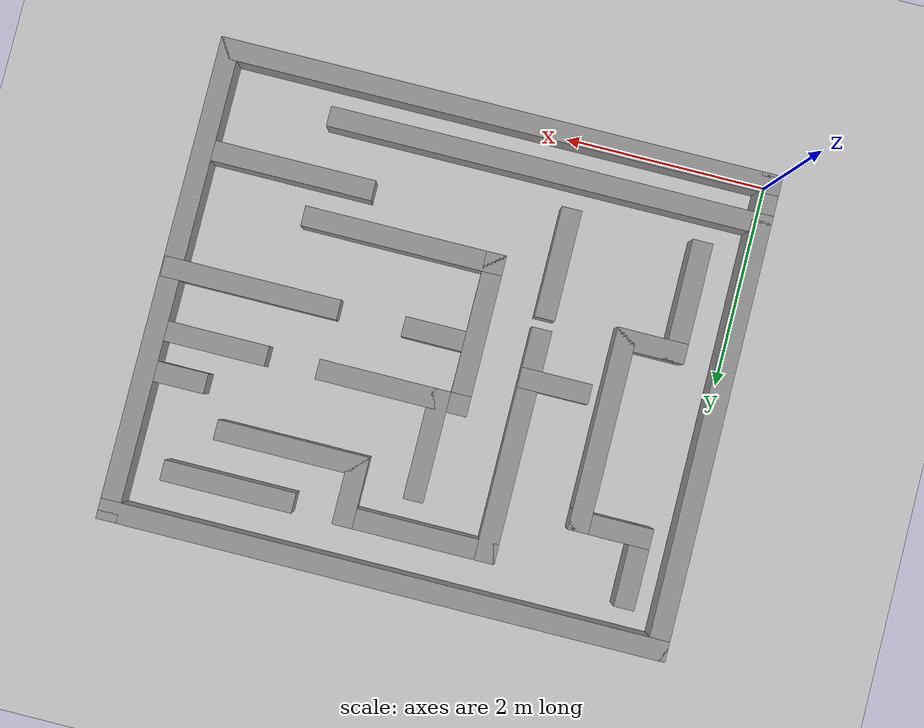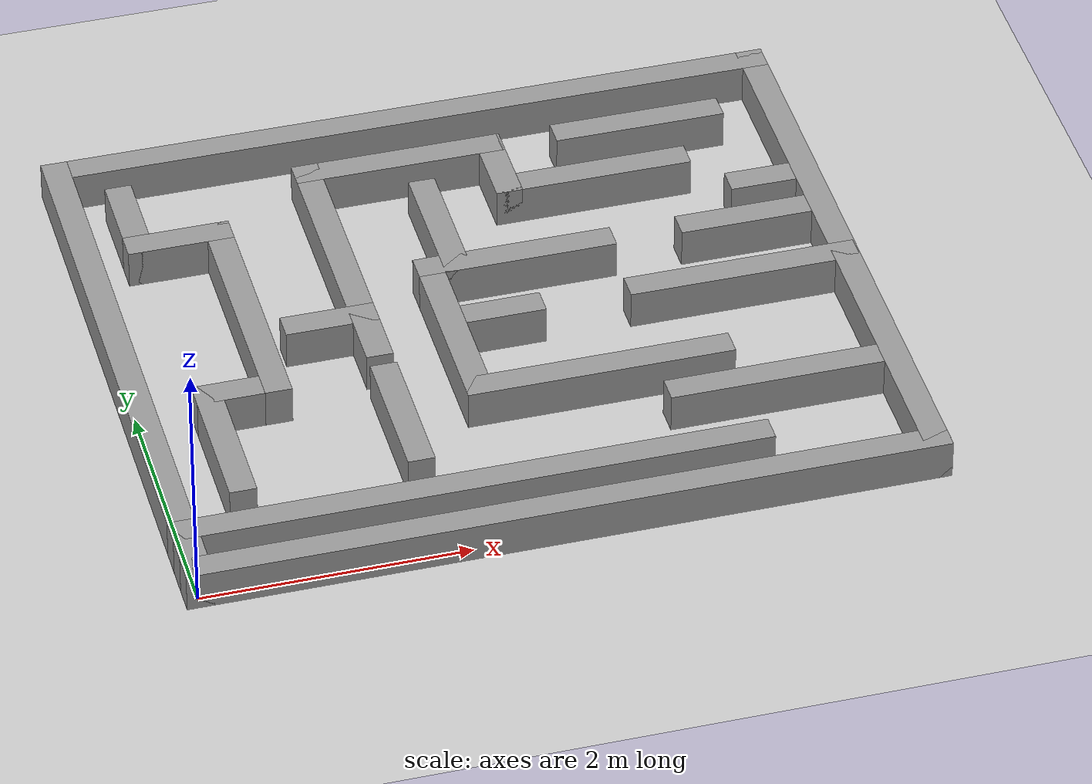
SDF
<sdf version='1.4'>
  <world name='default'>
    <!-- A global light source -->
    <include>
      <uri>model://sun</uri>
    </include>

    <!-- A ground plane -->
    <include>
      <uri>model://ground_plane</uri>
    </include>

    <physics type="ode">
      <real_time_update_rate>1000.0</real_time_update_rate>
      <max_step_size>0.001</max_step_size>
      <real_time_factor>1</real_time_factor>
      <ode>
        <solver>
          <type>quick</type>
          <iters>150</iters>
          <precon_iters>0</precon_iters>
          <sor>1.400000</sor>
          <use_dynamic_moi_rescaling>1</use_dynamic_moi_rescaling>
        </solver>
        <constraints>
          <cfm>0.00001</cfm>
          <erp>0.2</erp>
          <contact_max_correcting_vel>2000.000000</contact_max_correcting_vel>
          <contact_surface_layer>0.01000</contact_surface_layer>
        </constraints>
      </ode>
    </physics>

    <!-- A turtlebot symbol -->
    <include>
      <uri>model://Maze</uri>
    </include>

    <scene>
      <ambient>0.4 0.4 0.4 1</ambient>
      <background>0.7 0.7 0.7 1</background>
      <shadows>true</shadows>
    </scene>

    <gui fullscreen='0'>
      <camera name='user_camera'>
        <pose>0.8 0.0 12.0 0 1.5708 0</pose>
        <view_controller>orbit</view_controller>
      </camera>
    </gui>
  </world>
</sdf>

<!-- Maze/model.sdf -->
<sdf version='1.6'>
  <model name='Maze'>
    <pose frame=''>2.7 2.3 0 0 -0 0</pose>
    <link name='Wall_0'>
      <collision name='Wall_0_Collision'>
        <geometry>
          <box>
            <size>5.6 0.2 0.3</size>
          </box>
        </geometry>
        <pose frame=''>0 0 0.15 0 -0 0</pose>
      </collision>
      <visual name='Wall_0_Visual'>
        <pose frame=''>0 0 0.15 0 -0 0</pose>
        <geometry>
          <box>
            <size>5.6 0.2 0.3</size>
          </box>
        </geometry>
        <material>
          <script>
            <uri>file://media/materials/scripts/gazebo.material</uri>
            <name>Gazebo/Grey</name>
          </script>
          <ambient>1 1 1 1</ambient>
        </material>
      </visual>
      <pose frame=''>0 -2.3 0 0 -0 0</pose>
    </link>
    <link name='Wall_12'>
      <collision name='Wall_12_Collision'>
        <geometry>
          <box>
            <size>1.3 0.2 0.3</size>
          </box>
        </geometry>
        <pose frame=''>0 0 0.15 0 -0 0</pose>
      </collision>
      <visual name='Wall_12_Visual'>
        <pose frame=''>0 0 0.15 0 -0 0</pose>
        <geometry>
          <box>
            <size>1.3 0.2 0.3</size>
          </box>
        </geometry>
        <material>
          <script>
            <uri>file://media/materials/scripts/gazebo.material</uri>
            <name>Gazebo/Grey</name>
          </script>
          <ambient>1 1 1 1</ambient>
        </material>
      </visual>
      <pose frame=''>1.65 1.8 0 0 -0 3.14159</pose>
    </link>
    <link name='Wall_14'>
      <collision name='Wall_14_Collision'>
        <geometry>
          <box>
            <size>0.7 0.2 0.3</size>
          </box>
        </geometry>
        <pose frame=''>0 0 0.15 0 -0 0</pose>
      </collision>
      <visual name='Wall_14_Visual'>
        <pose frame=''>0 0 0.15 0 -0 0</pose>
        <geometry>
          <box>
            <size>0.7 0.2 0.3</size>
          </box>
        </geometry>
        <material>
          <script>
            <uri>file://media/materials/scripts/gazebo.material</uri>
            <name>Gazebo/Grey</name>
          </script>
          <ambient>1 1 1 1</ambient>
        </material>
      </visual>
      <pose frame=''>0.5 1.55 0 0 0 -1.5708</pose>
    </link>
    <link name='Wall_15'>
      <collision name='Wall_15_Collision'>
        <geometry>
          <box>
            <size>1.5 0.2 0.3</size>
          </box>
        </geometry>
        <pose frame=''>0 0 0.15 0 -0 0</pose>
      </collision>
      <visual name='Wall_15_Visual'>
        <pose frame=''>0 0 0.15 0 -0 0</pose>
        <geometry>
          <box>
            <size>1.5 0.2 0.3</size>
          </box>
        </geometry>
        <material>
          <script>
            <uri>file://media/materials/scripts/gazebo.material</uri>
            <name>Gazebo/Grey</name>
          </script>
          <ambient>1 1 1 1</ambient>
        </material>
      </visual>
      <pose frame=''>1.15 1.3 0 0 -0 0</pose>
    </link>
    <link name='Wall_18'>
      <collision name='Wall_18_Collision'>
        <geometry>
          <box>
            <size>1.4 0.2 0.3</size>
          </box>
        </geometry>
        <pose frame=''>0 0 0.15 0 -0 0</pose>
      </collision>
      <visual name='Wall_18_Visual'>
        <pose frame=''>0 0 0.15 0 -0 0</pose>
        <geometry>
          <box>
            <size>1.4 0.2 0.3</size>
          </box>
        </geometry>
        <material>
          <script>
            <uri>file://media/materials/scripts/gazebo.material</uri>
            <name>Gazebo/Grey</name>
          </script>
          <ambient>1 1 1 1</ambient>
        </material>
      </visual>
      <pose frame=''>-0.3 -0.3 0 0 0 -1.5708</pose>
    </link>
    <link name='Wall_19'>
      <collision name='Wall_19_Collision'>
        <geometry>
          <box>
            <size>2 0.2 0.3</size>
          </box>
        </geometry>
        <pose frame=''>0 0 0.15 0 -0 0</pose>
      </collision>
      <visual name='Wall_19_Visual'>
        <pose frame=''>0 0 0.15 0 -0 0</pose>
        <geometry>
          <box>
            <size>2 0.2 0.3</size>
          </box>
        </geometry>
        <material>
          <script>
            <uri>file://media/materials/scripts/gazebo.material</uri>
            <name>Gazebo/Grey</name>
          </script>
          <ambient>1 1 1 1</ambient>
        </material>
      </visual>
      <pose frame=''>0.6 -0.9 0 0 -0 0</pose>
    </link>
    <link name='Wall_21'>
      <collision name='Wall_21_Collision'>
        <geometry>
          <box>
            <size>1.75 0.2 0.3</size>
          </box>
        </geometry>
        <pose frame=''>0 0 0.15 0 -0 0</pose>
      </collision>
      <visual name='Wall_21_Visual'>
        <pose frame=''>0 0 0.15 0 -0 0</pose>
        <geometry>
          <box>
            <size>1.75 0.2 0.3</size>
          </box>
        </geometry>
        <material>
          <script>
            <uri>file://media/materials/scripts/gazebo.material</uri>
            <name>Gazebo/Grey</name>
          </script>
          <ambient>1 1 1 1</ambient>
        </material>
      </visual>
      <pose frame=''>1.915 -0.1 0 0 -0 0</pose>
    </link>
    <link name='Wall_23'>
      <collision name='Wall_23_Collision'>
        <geometry>
          <box>
            <size>2.3 0.2 0.3</size>
          </box>
        </geometry>
        <pose frame=''>0 0 0.15 0 -0 0</pose>
      </collision>
      <visual name='Wall_23_Visual'>
        <pose frame=''>0 0 0.15 0 -0 0</pose>
        <geometry>
          <box>
            <size>2.3 0.2 0.3</size>
          </box>
        </geometry>
        <material>
          <script>
            <uri>file://media/materials/scripts/gazebo.material</uri>
            <name>Gazebo/Grey</name>
          </script>
          <ambient>1 1 1 1</ambient>
        </material>
      </visual>
      <pose frame=''>-0.9 0.75 0 0 -0 1.5708</pose>
    </link>
    <link name='Wall_24'>
      <collision name='Wall_24_Collision'>
        <geometry>
          <box>
            <size>1.6 0.2 0.3</size>
          </box>
        </geometry>
        <pose frame=''>0 0 0.15 0 -0 0</pose>
      </collision>
      <visual name='Wall_24_Visual'>
        <pose frame=''>0 0 0.15 0 -0 0</pose>
        <geometry>
          <box>
            <size>1.6 0.2 0.3</size>
          </box>
        </geometry>
        <material>
          <script>
            <uri>file://media/materials/scripts/gazebo.material</uri>
            <name>Gazebo/Grey</name>
          </script>
          <ambient>1 1 1 1</ambient>
        </material>
      </visual>
      <pose frame=''>-0.2 1.8 0 0 -0 0</pose>
    </link>
    <link name='Wall_27'>
      <collision name='Wall_27_Collision'>
        <geometry>
          <box>
            <size>0.7 0.2 0.3</size>
          </box>
        </geometry>
        <pose frame=''>0 0 0.15 0 -0 0</pose>
      </collision>
      <visual name='Wall_27_Visual'>
        <pose frame=''>0 0 0.15 0 -0 0</pose>
        <geometry>
          <box>
            <size>0.7 0.2 0.3</size>
          </box>
        </geometry>
        <material>
          <script>
            <uri>file://media/materials/scripts/gazebo.material</uri>
            <name>Gazebo/Grey</name>
          </script>
          <ambient>1 1 1 1</ambient>
        </material>
      </visual>
      <pose frame=''>-1.95 -0.5 0 0 -0 0</pose>
    </link>
    <link name='Wall_28'>
      <collision name='Wall_28_Collision'>
        <geometry>
          <box>
            <size>2 0.2 0.3</size>
          </box>
        </geometry>
        <pose frame=''>0 0 0.15 0 -0 0</pose>
      </collision>
      <visual name='Wall_28_Visual'>
        <pose frame=''>0 0 0.15 0 -0 0</pose>
        <geometry>
          <box>
            <size>2 0.2 0.3</size>
          </box>
        </geometry>
        <material>
          <script>
            <uri>file://media/materials/scripts/gazebo.material</uri>
            <name>Gazebo/Grey</name>
          </script>
          <ambient>1 1 1 1</ambient>
        </material>
      </visual>
      <pose frame=''>-1.7 0.4 0 0 -0 1.5708</pose>
    </link>
    <link name='Wall_29'>
      <collision name='Wall_29_Collision'>
        <geometry>
          <box>
            <size>0.8 0.2 0.3</size>
          </box>
        </geometry>
        <pose frame=''>0 0 0.15 0 -0 0</pose>
      </collision>
      <visual name='Wall_29_Visual'>
        <pose frame=''>0 0 0.15 0 -0 0</pose>
        <geometry>
          <box>
            <size>0.8 0.2 0.3</size>
          </box>
        </geometry>
        <material>
          <script>
            <uri>file://media/materials/scripts/gazebo.material</uri>
            <name>Gazebo/Grey</name>
          </script>
          <ambient>1 1 1 1</ambient>
        </material>
      </visual>
      <pose frame=''>-2 1.3 0 0 -0 3.14159</pose>
    </link>
    <link name='Wall_3'>
      <collision name='Wall_3_Collision'>
        <geometry>
          <box>
            <size>4.8 0.2 0.3</size>
          </box>
        </geometry>
        <pose frame=''>0 0 0.15 0 -0 0</pose>
      </collision>
      <visual name='Wall_3_Visual'>
        <pose frame=''>0 0 0.15 0 -0 0</pose>
        <geometry>
          <box>
            <size>4.8 0.2 0.3</size>
          </box>
        </geometry>
        <material>
          <script>
            <uri>file://media/materials/scripts/gazebo.material</uri>
            <name>Gazebo/Grey</name>
          </script>
          <ambient>1 1 1 1</ambient>
        </material>
      </visual>
      <pose frame=''>2.7 0 0 0 -0 1.5708</pose>
    </link>
    <link name='Wall_30'>
      <collision name='Wall_30_Collision'>
        <geometry>
          <box>
            <size>0.8 0.2 0.3</size>
          </box>
        </geometry>
        <pose frame=''>0 0 0.15 0 -0 0</pose>
      </collision>
      <visual name='Wall_30_Visual'>
        <pose frame=''>0 0 0.15 0 -0 0</pose>
        <geometry>
          <box>
            <size>0.8 0.2 0.3</size>
          </box>
        </geometry>
        <material>
          <script>
            <uri>file://media/materials/scripts/gazebo.material</uri>
            <name>Gazebo/Grey</name>
          </script>
          <ambient>1 1 1 1</ambient>
        </material>
      </visual>
      <pose frame=''>-2.3 1.6 0 0 -0 1.5708</pose>
    </link>
    <link name='Wall_32'>
      <collision name='Wall_32_Collision'>
        <geometry>
          <box>
            <size>1.6 0.2 0.3</size>
          </box>
        </geometry>
        <pose frame=''>0 0 0.15 0 -0 0</pose>
      </collision>
      <visual name='Wall_32_Visual'>
        <pose frame=''>0 0 0.15 0 -0 0</pose>
        <geometry>
          <box>
            <size>1.6 0.2 0.3</size>
          </box>
        </geometry>
        <material>
          <script>
            <uri>file://media/materials/scripts/gazebo.material</uri>
            <name>Gazebo/Grey</name>
          </script>
          <ambient>1 1 1 1</ambient>
        </material>
      </visual>
      <pose frame=''>1.8 -1.3 0 0 -0 0</pose>
    </link>
    <link name='Wall_34'>
      <collision name='Wall_34_Collision'>
        <geometry>
          <box>
            <size>1.2 0.2 0.3</size>
          </box>
        </geometry>
        <pose frame=''>0 0 0.15 0 -0 0</pose>
      </collision>
      <visual name='Wall_34_Visual'>
        <pose frame=''>0 0 0.15 0 -0 0</pose>
        <geometry>
          <box>
            <size>1.2 0.2 0.3</size>
          </box>
        </geometry>
        <material>
          <script>
            <uri>file://media/materials/scripts/gazebo.material</uri>
            <name>Gazebo/Grey</name>
          </script>
          <ambient>1 1 1 1</ambient>
        </material>
      </visual>
      <pose frame=''>-2.2 -1 0 0 0 -1.5708</pose>
    </link>
    <link name='Wall_38'>
      <collision name='Wall_38_Collision'>
        <geometry>
          <box>
            <size>0.7 0.2 0.3</size>
          </box>
        </geometry>
        <pose frame=''>0 0 0.15 0 -0 0</pose>
      </collision>
      <visual name='Wall_38_Visual'>
        <pose frame=''>0 0 0.15 0 -0 0</pose>
        <geometry>
          <box>
            <size>0.7 0.2 0.3</size>
          </box>
        </geometry>
        <material>
          <script>
            <uri>file://media/materials/scripts/gazebo.material</uri>
            <name>Gazebo/Grey</name>
          </script>
          <ambient>1 1 1 1</ambient>
        </material>
      </visual>
      <pose frame=''>-1.15 0.1 0 0 -0 3.14159</pose>
    </link>
    <link name='Wall_40'>
      <collision name='Wall_40_Collision'>
        <geometry>
          <box>
            <size>1.1 0.2 0.3</size>
          </box>
        </geometry>
        <pose frame=''>0 0 0.15 0 -0 0</pose>
      </collision>
      <visual name='Wall_40_Visual'>
        <pose frame=''>0 0 0.15 0 -0 0</pose>
        <geometry>
          <box>
            <size>1.1 0.2 0.3</size>
          </box>
        </geometry>
        <material>
          <script>
            <uri>file://media/materials/scripts/gazebo.material</uri>
            <name>Gazebo/Grey</name>
          </script>
          <ambient>1 1 1 1</ambient>
        </material>
      </visual>
      <pose frame=''>-0.1 0.95 0 0 -0 1.5708</pose>
    </link>
    <link name='Wall_42'>
      <collision name='Wall_42_Collision'>
        <geometry>
          <box>
            <size>0.5 0.2 0.3</size>
          </box>
        </geometry>
        <pose frame=''>0 0 0.15 0 -0 0</pose>
      </collision>
      <visual name='Wall_42_Visual'>
        <pose frame=''>0 0 0.15 0 -0 0</pose>
        <geometry>
          <box>
            <size>0.5 0.2 0.3</size>
          </box>
        </geometry>
        <material>
          <script>
            <uri>file://media/materials/scripts/gazebo.material</uri>
            <name>Gazebo/Grey</name>
          </script>
          <ambient>1 1 1 1</ambient>
        </material>
      </visual>
      <pose frame=''>2.35 0.9 0 0 -0 0</pose>
    </link>
    <link name='Wall_46'>
      <collision name='Wall_46_Collision'>
        <geometry>
          <box>
            <size>1 0.2 0.3</size>
          </box>
        </geometry>
        <pose frame=''>0 0 0.15 0 -0 0</pose>
      </collision>
      <visual name='Wall_46_Visual'>
        <pose frame=''>0 0 0.15 0 -0 0</pose>
        <geometry>
          <box>
            <size>1 0.2 0.3</size>
          </box>
        </geometry>
        <material>
          <script>
            <uri>file://media/materials/scripts/gazebo.material</uri>
            <name>Gazebo/Grey</name>
          </script>
          <ambient>1 1 1 1</ambient>
        </material>
      </visual>
      <pose frame=''>2.1 0.5 0 0 -0 0</pose>
    </link>
    <link name='Wall_5'>
      <collision name='Wall_5_Collision'>
        <geometry>
          <box>
            <size>5.6 0.2 0.3</size>
          </box>
        </geometry>
        <pose frame=''>0 0 0.15 0 -0 0</pose>
      </collision>
      <visual name='Wall_5_Visual'>
        <pose frame=''>0 0 0.15 0 -0 0</pose>
        <geometry>
          <box>
            <size>5.6 0.2 0.3</size>
          </box>
        </geometry>
        <material>
          <script>
            <uri>file://media/materials/scripts/gazebo.material</uri>
            <name>Gazebo/Grey</name>
          </script>
          <ambient>1 1 1 1</ambient>
        </material>
      </visual>
      <pose frame=''>0 2.3 0 0 -0 3.14159</pose>
    </link>
    <link name='Wall_54'>
      <collision name='Wall_54_Collision'>
        <geometry>
          <box>
            <size>1.5 0.2 0.3</size>
          </box>
        </geometry>
        <pose frame=''>0 0 0.15 0 -0 0</pose>
      </collision>
      <visual name='Wall_54_Visual'>
        <pose frame=''>0 0 0.15 0 -0 0</pose>
        <geometry>
          <box>
            <size>1.5 0.2 0.3</size>
          </box>
        </geometry>
        <material>
          <script>
            <uri>file://media/materials/scripts/gazebo.material</uri>
            <name>Gazebo/Grey</name>
          </script>
          <ambient>1 1 1 1</ambient>
        </material>
      </visual>
      <pose frame=''>0.35 0.5 0 0 -0 0</pose>
    </link>
    <link name='Wall_56'>
      <collision name='Wall_56_Collision'>
        <geometry>
          <box>
            <size>0.6 0.2 0.3</size>
          </box>
        </geometry>
        <pose frame=''>0 0 0.15 0 -0 0</pose>
      </collision>
      <visual name='Wall_56_Visual'>
        <pose frame=''>0 0 0.15 0 -0 0</pose>
        <geometry>
          <box>
            <size>0.6 0.2 0.3</size>
          </box>
        </geometry>
        <material>
          <script>
            <uri>file://media/materials/scripts/gazebo.material</uri>
            <name>Gazebo/Grey</name>
          </script>
          <ambient>1 1 1 1</ambient>
        </material>
      </visual>
      <pose frame=''>0.1 -0.1 0 0 -0 3.14159</pose>
    </link>
    <link name='Wall_59'>
      <collision name='Wall_59_Collision'>
        <geometry>
          <box>
            <size>1.1 0.2 0.3</size>
          </box>
        </geometry>
        <pose frame=''>0 0 0.15 0 -0 0</pose>
      </collision>
      <visual name='Wall_59_Visual'>
        <pose frame=''>0 0 0.15 0 -0 0</pose>
        <geometry>
          <box>
            <size>1.1 0.2 0.3</size>
          </box>
        </geometry>
        <material>
          <script>
            <uri>file://media/materials/scripts/gazebo.material</uri>
            <name>Gazebo/Grey</name>
          </script>
          <ambient>1 1 1 1</ambient>
        </material>
      </visual>
      <pose frame=''>-0.9 -1.05 0 0 0 -1.5708</pose>
    </link>
    <link name='Wall_7'>
      <collision name='Wall_7_Collision'>
        <geometry>
          <box>
            <size>4.8 0.2 0.3</size>
          </box>
        </geometry>
        <pose frame=''>0 0 0.15 0 -0 0</pose>
      </collision>
      <visual name='Wall_7_Visual'>
        <pose frame=''>0 0 0.15 0 -0 0</pose>
        <geometry>
          <box>
            <size>4.8 0.2 0.3</size>
          </box>
        </geometry>
        <material>
          <script>
            <uri>file://media/materials/scripts/gazebo.material</uri>
            <name>Gazebo/Grey</name>
          </script>
          <ambient>1 1 1 1</ambient>
        </material>
      </visual>
      <pose frame=''>-2.7 0 0 0 -0 1.5708</pose>
    </link>
    <link name='Wall_9'>
      <collision name='Wall_9_Collision'>
        <geometry>
          <box>
            <size>4.4 0.2 0.3</size>
          </box>
        </geometry>
        <pose frame=''>0 0 0.15 0 -0 0</pose>
      </collision>
      <visual name='Wall_9_Visual'>
        <pose frame=''>0 0 0.15 0 -0 0</pose>
        <geometry>
          <box>
            <size>4.4 0.2 0.3</size>
          </box>
        </geometry>
        <material>
          <script>
            <uri>file://media/materials/scripts/gazebo.material</uri>
            <name>Gazebo/Grey</name>
          </script>
          <ambient>1 1 1 1</ambient>
        </material>
      </visual>
      <pose frame=''>-0.6 -1.9 0 0 -0 0</pose>
    </link>
    <static>1</static>
  </model>
</sdf>
